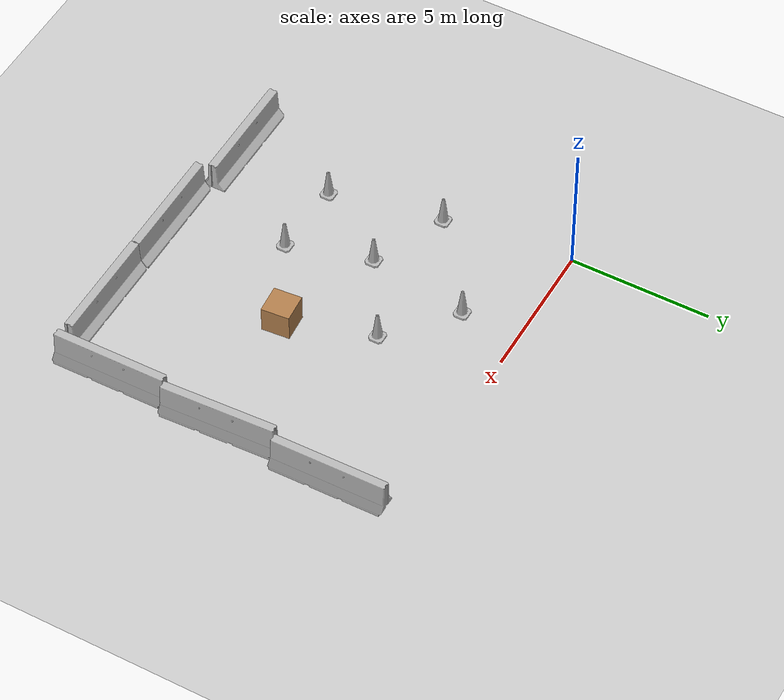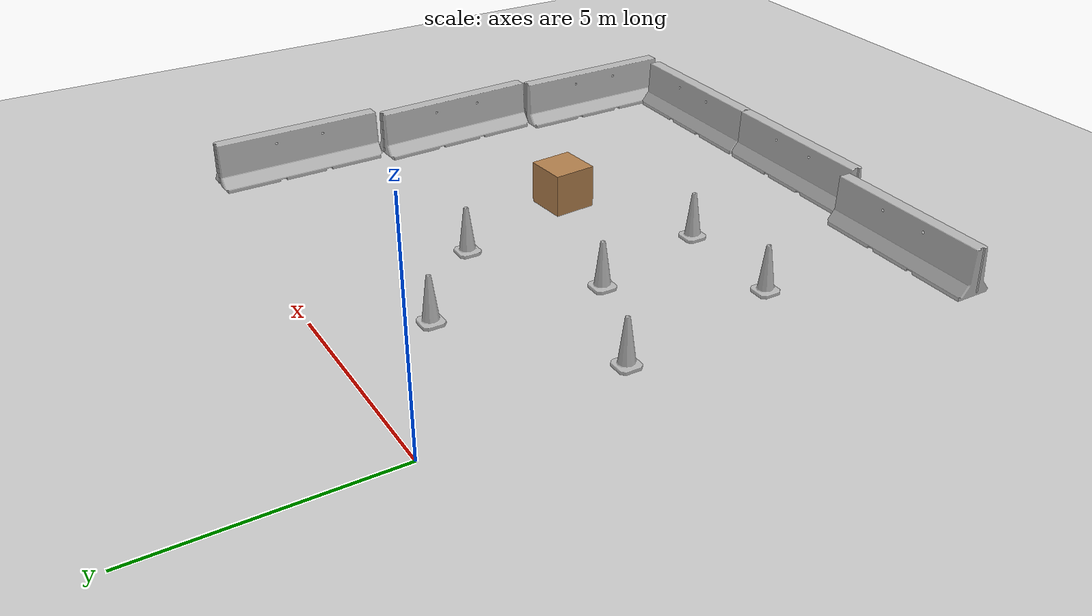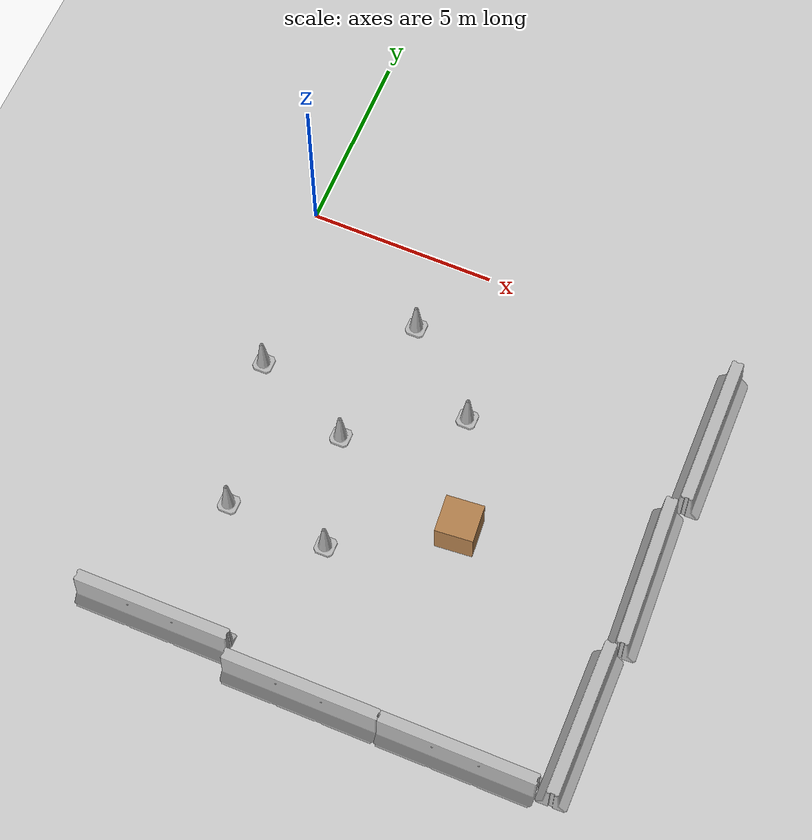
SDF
<sdf version="1.4">
 <world name="default">
  <model name="ground_plane">
   <static>1</static>
   <link name="link">
    <collision name="collision">
     <geometry><plane><normal>0 0 1</normal><size>100 100</size></plane></geometry>
     <surface><friction><ode><mu>100</mu><mu2>50</mu2></ode></friction></surface>
    </collision>
    <visual name="visual">
     <cast_shadows>0</cast_shadows>
     <geometry><plane><normal>0 0 1</normal><size>100 100</size></plane></geometry>
     <material>
      <script><uri>file://media/materials/scripts/gazebo.material</uri><name>Gazebo/Grey</name></script>
     </material>
    </visual>
    <velocity_decay><linear>0</linear><angular>0</angular></velocity_decay>
   </link>
  </model>
  <model name="unit_box_2">
   <pose>7 -7 0.5 0 -0 0.083754</pose>
   <link name="link">
    <inertial>
     <mass>1</mass>
     <inertia><ixx>1</ixx><ixy>0</ixy><ixz>0</ixz><iyy>1</iyy><iyz>0</iyz><izz>1</izz></inertia>
    </inertial>
    <collision name="collision"><geometry><box><size>1 1 1</size></box></geometry></collision>
    <visual name="visual">
     <geometry><box><size>1 1 1</size></box></geometry>
     <material>
      <script><uri>file://media/materials/scripts/gazebo.material</uri><name>Gazebo/Wood</name></script>
     </material>
    </visual>
    <velocity_decay><linear>0</linear><angular>0</angular></velocity_decay>
   </link>
   <static>0</static>
  </model>
  <model name="jersey_barrier_1">
   <static>1</static>
   <link name="link">
    <visual name="visual">
     <geometry><mesh><uri>model://jersey_barrier/meshes/jersey_barrier.dae</uri></mesh></geometry>
    </visual>
    <collision name="upright">
     <pose>0 0 0.5715 0 -0 0</pose>
     <geometry><box><size>4.06542 0.3063 1.143</size></box></geometry>
    </collision>
    <collision name="base">
     <pose>0 0 0.032258 0 -0 0</pose>
     <geometry><box><size>4.06542 0.8107 0.064516</size></box></geometry>
    </collision>
    <collision name="base2">
     <pose>0 0 0.1 0 -0 0</pose>
     <geometry><box><size>4.06542 0.65 0.1</size></box></geometry>
    </collision>
    <collision name="base3">
     <pose>0 0 0.2 0 -0 0</pose>
     <geometry><box><size>4.06542 0.5 0.1</size></box></geometry>
    </collision>
    <collision name="left-angle">
     <pose>0 -0.224 0.2401 0.9 -0 0</pose>
     <geometry><box><size>4.06542 0.5 0.064516</size></box></geometry>
    </collision>
    <collision name="right-angle">
     <pose>0 0.224 0.2401 -0.9 0 0</pose>
     <geometry><box><size>4.06542 0.5 0.064516</size></box></geometry>
    </collision>
    <velocity_decay><linear>0</linear><angular>0</angular></velocity_decay>
   </link>
   <pose>1 -12 0 0 -0 0</pose>
  </model>
  <model name="jersey_barrier_2">
   <static>1</static>
   <link name="link">
    <visual name="visual">
     <geometry><mesh><uri>model://jersey_barrier/meshes/jersey_barrier.dae</uri></mesh></geometry>
    </visual>
    <collision name="upright">
     <pose>0 0 0.5715 0 -0 0</pose>
     <geometry><box><size>4.06542 0.3063 1.143</size></box></geometry>
    </collision>
    <collision name="base">
     <pose>0 0 0.032258 0 -0 0</pose>
     <geometry><box><size>4.06542 0.8107 0.064516</size></box></geometry>
    </collision>
    <collision name="base2">
     <pose>0 0 0.1 0 -0 0</pose>
     <geometry><box><size>4.06542 0.65 0.1</size></box></geometry>
    </collision>
    <collision name="base3">
     <pose>0 0 0.2 0 -0 0</pose>
     <geometry><box><size>4.06542 0.5 0.1</size></box></geometry>
    </collision>
    <collision name="left-angle">
     <pose>0 -0.224 0.2401 0.9 -0 0</pose>
     <geometry><box><size>4.06542 0.5 0.064516</size></box></geometry>
    </collision>
    <collision name="right-angle">
     <pose>0 0.224 0.2401 -0.9 0 0</pose>
     <geometry><box><size>4.06542 0.5 0.064516</size></box></geometry>
    </collision>
    <velocity_decay><linear>0</linear><angular>0</angular></velocity_decay>
   </link>
   <pose>5.13642 -12.451 0 0 -0 0</pose>
  </model>
  <model name="jersey_barrier_3">
   <static>1</static>
   <link name="link">
    <visual name="visual">
     <geometry><mesh><uri>model://jersey_barrier/meshes/jersey_barrier.dae</uri></mesh></geometry>
    </visual>
    <collision name="upright">
     <pose>0 0 0.5715 0 -0 0</pose>
     <geometry><box><size>4.06542 0.3063 1.143</size></box></geometry>
    </collision>
    <collision name="base">
     <pose>0 0 0.032258 0 -0 0</pose>
     <geometry><box><size>4.06542 0.8107 0.064516</size></box></geometry>
    </collision>
    <collision name="base2">
     <pose>0 0 0.1 0 -0 0</pose>
     <geometry><box><size>4.06542 0.65 0.1</size></box></geometry>
    </collision>
    <collision name="base3">
     <pose>0 0 0.2 0 -0 0</pose>
     <geometry><box><size>4.06542 0.5 0.1</size></box></geometry>
    </collision>
    <collision name="left-angle">
     <pose>0 -0.224 0.2401 0.9 -0 0</pose>
     <geometry><box><size>4.06542 0.5 0.064516</size></box></geometry>
    </collision>
    <collision name="right-angle">
     <pose>0 0.224 0.2401 -0.9 0 0</pose>
     <geometry><box><size>4.06542 0.5 0.064516</size></box></geometry>
    </collision>
    <velocity_decay><linear>0</linear><angular>0</angular></velocity_decay>
   </link>
   <pose>9.19104 -12.4604 0 0 -0 0</pose>
  </model>
  <model name="jersey_barrier_4">
   <static>1</static>
   <link name="link">
    <visual name="visual">
     <geometry><mesh><uri>model://jersey_barrier/meshes/jersey_barrier.dae</uri></mesh></geometry>
    </visual>
    <collision name="upright">
     <pose>0 0 0.5715 0 -0 0</pose>
     <geometry><box><size>4.06542 0.3063 1.143</size></box></geometry>
    </collision>
    <collision name="base">
     <pose>0 0 0.032258 0 -0 0</pose>
     <geometry><box><size>4.06542 0.8107 0.064516</size></box></geometry>
    </collision>
    <collision name="base2">
     <pose>0 0 0.1 0 -0 0</pose>
     <geometry><box><size>4.06542 0.65 0.1</size></box></geometry>
    </collision>
    <collision name="base3">
     <pose>0 0 0.2 0 -0 0</pose>
     <geometry><box><size>4.06542 0.5 0.1</size></box></geometry>
    </collision>
    <collision name="left-angle">
     <pose>0 -0.224 0.2401 0.9 -0 0</pose>
     <geometry><box><size>4.06542 0.5 0.064516</size></box></geometry>
    </collision>
    <collision name="right-angle">
     <pose>0 0.224 0.2401 -0.9 0 0</pose>
     <geometry><box><size>4.06542 0.5 0.064516</size></box></geometry>
    </collision>
    <velocity_decay><linear>0</linear><angular>0</angular></velocity_decay>
   </link>
   <pose>11.6163 -10.6377 0 0 -0 1.58161</pose>
  </model>
  <model name="jersey_barrier_13">
   <static>1</static>
   <link name="link">
    <visual name="visual">
     <geometry><mesh><uri>model://jersey_barrier/meshes/jersey_barrier.dae</uri></mesh></geometry>
    </visual>
    <collision name="upright">
     <pose>0 0 0.5715 0 -0 0</pose>
     <geometry><box><size>4.06542 0.3063 1.143</size></box></geometry>
    </collision>
    <collision name="base">
     <pose>0 0 0.032258 0 -0 0</pose>
     <geometry><box><size>4.06542 0.8107 0.064516</size></box></geometry>
    </collision>
    <collision name="base2">
     <pose>0 0 0.1 0 -0 0</pose>
     <geometry><box><size>4.06542 0.65 0.1</size></box></geometry>
    </collision>
    <collision name="base3">
     <pose>0 0 0.2 0 -0 0</pose>
     <geometry><box><size>4.06542 0.5 0.1</size></box></geometry>
    </collision>
    <collision name="left-angle">
     <pose>0 -0.224 0.2401 0.9 -0 0</pose>
     <geometry><box><size>4.06542 0.5 0.064516</size></box></geometry>
    </collision>
    <collision name="right-angle">
     <pose>0 0.224 0.2401 -0.9 0 0</pose>
     <geometry><box><size>4.06542 0.5 0.064516</size></box></geometry>
    </collision>
    <velocity_decay><linear>0</linear><angular>0</angular></velocity_decay>
   </link>
   <pose>11.9521 -2.38624 0 0 -0 1.58545</pose>
  </model>
  <model name="jersey_barrier_14">
   <static>1</static>
   <link name="link">
    <visual name="visual">
     <geometry><mesh><uri>model://jersey_barrier/meshes/jersey_barrier.dae</uri></mesh></geometry>
    </visual>
    <collision name="upright">
     <pose>0 0 0.5715 0 -0 0</pose>
     <geometry><box><size>4.06542 0.3063 1.143</size></box></geometry>
    </collision>
    <collision name="base">
     <pose>0 0 0.032258 0 -0 0</pose>
     <geometry><box><size>4.06542 0.8107 0.064516</size></box></geometry>
    </collision>
    <collision name="base2">
     <pose>0 0 0.1 0 -0 0</pose>
     <geometry><box><size>4.06542 0.65 0.1</size></box></geometry>
    </collision>
    <collision name="base3">
     <pose>0 0 0.2 0 -0 0</pose>
     <geometry><box><size>4.06542 0.5 0.1</size></box></geometry>
    </collision>
    <collision name="left-angle">
     <pose>0 -0.224 0.2401 0.9 -0 0</pose>
     <geometry><box><size>4.06542 0.5 0.064516</size></box></geometry>
    </collision>
    <collision name="right-angle">
     <pose>0 0.224 0.2401 -0.9 0 0</pose>
     <geometry><box><size>4.06542 0.5 0.064516</size></box></geometry>
    </collision>
    <velocity_decay><linear>0</linear><angular>0</angular></velocity_decay>
   </link>
   <pose>11.7484 -6.5369 0 0 -0 1.61742</pose>
  </model>
  <model name="Construction Cone_1">
   <link name="link">
    <collision name="collision">
     <geometry>
      <mesh><scale>10 10 10</scale><uri>model://construction_cone/meshes/construction_cone.dae</uri></mesh>
     </geometry>
    </collision>
    <visual name="visual">
     <geometry>
      <mesh><scale>10 10 10</scale><uri>model://construction_cone/meshes/construction_cone.dae</uri></mesh>
     </geometry>
    </visual>
    <velocity_decay><linear>0</linear><angular>0</angular></velocity_decay>
    <inertial>
     <inertia><ixx>1</ixx><ixy>0</ixy><ixz>0</ixz><iyy>1</iyy><iyz>0</iyz><izz>1</izz></inertia>
     <mass>1</mass>
    </inertial>
   </link>
   <pose>0.541669 -4.54954 -9e-06 0 1e-06 0</pose>
   <static>0</static>
  </model>
  <model name="Construction Cone_3">
   <link name="link">
    <collision name="collision">
     <geometry>
      <mesh><scale>10 10 10</scale><uri>model://construction_cone/meshes/construction_cone.dae</uri></mesh>
     </geometry>
    </collision>
    <visual name="visual">
     <geometry>
      <mesh><scale>10 10 10</scale><uri>model://construction_cone/meshes/construction_cone.dae</uri></mesh>
     </geometry>
    </visual>
    <velocity_decay><linear>0</linear><angular>0</angular></velocity_decay>
    <inertial>
     <inertia><ixx>1</ixx><ixy>0</ixy><ixz>0</ixz><iyy>1</iyy><iyz>0</iyz><izz>1</izz></inertia>
     <mass>1</mass>
    </inertial>
   </link>
   <pose>3.78316 -2.07574 0 2e-06 1e-06 8.07794e-28</pose>
   <static>0</static>
  </model>
  <model name="Construction Cone_7">
   <link name="link">
    <collision name="collision">
     <geometry>
      <mesh><scale>10 10 10</scale><uri>model://construction_cone/meshes/construction_cone.dae</uri></mesh>
     </geometry>
    </collision>
    <visual name="visual">
     <geometry>
      <mesh><scale>10 10 10</scale><uri>model://construction_cone/meshes/construction_cone.dae</uri></mesh>
     </geometry>
    </visual>
    <velocity_decay><linear>0</linear><angular>0</angular></velocity_decay>
    <inertial>
     <inertia><ixx>1</ixx><ixy>0</ixy><ixz>0</ixz><iyy>1</iyy><iyz>0</iyz><izz>1</izz></inertia>
     <mass>1</mass>
    </inertial>
   </link>
   <pose>1.3561 -8.48937 -0 -2e-06 -0 -0</pose>
   <static>0</static>
  </model>
  <model name="Construction Cone_15">
   <link name="link">
    <collision name="collision">
     <geometry>
      <mesh><scale>10 10 10</scale><uri>model://construction_cone/meshes/construction_cone.dae</uri></mesh>
     </geometry>
    </collision>
    <visual name="visual">
     <geometry>
      <mesh><scale>10 10 10</scale><uri>model://construction_cone/meshes/construction_cone.dae</uri></mesh>
     </geometry>
    </visual>
    <velocity_decay><linear>0</linear><angular>0</angular></velocity_decay>
    <inertial>
     <inertia><ixx>1</ixx><ixy>0</ixy><ixz>0</ixz><iyy>1</iyy><iyz>0</iyz><izz>1</izz></inertia>
     <mass>1</mass>
    </inertial>
   </link>
   <pose>4.0578 -8.60381 -9e-06 0 1e-06 0</pose>
   <static>0</static>
  </model>
  <model name="Construction Cone_18">
   <link name="link">
    <collision name="collision">
     <geometry>
      <mesh><scale>10 10 10</scale><uri>model://construction_cone/meshes/construction_cone.dae</uri></mesh>
     </geometry>
    </collision>
    <visual name="visual">
     <geometry>
      <mesh><scale>10 10 10</scale><uri>model://construction_cone/meshes/construction_cone.dae</uri></mesh>
     </geometry>
    </visual>
    <velocity_decay><linear>0</linear><angular>0</angular></velocity_decay>
    <inertial>
     <inertia><ixx>1</ixx><ixy>0</ixy><ixz>0</ixz><iyy>1</iyy><iyz>0</iyz><izz>1</izz></inertia>
     <mass>1</mass>
    </inertial>
   </link>
   <pose>3.21457 -5.7046 -5e-06 -3e-06 5e-06 3.23117e-27</pose>
   <static>0</static>
  </model>
  <model name="Construction Cone_22">
   <link name="link">
    <collision name="collision">
     <geometry>
      <mesh><scale>10 10 10</scale><uri>model://construction_cone/meshes/construction_cone.dae</uri></mesh>
     </geometry>
    </collision>
    <visual name="visual">
     <geometry>
      <mesh><scale>10 10 10</scale><uri>model://construction_cone/meshes/construction_cone.dae</uri></mesh>
     </geometry>
    </visual>
    <velocity_decay><linear>0</linear><angular>0</angular></velocity_decay>
    <inertial>
     <inertia><ixx>1</ixx><ixy>0</ixy><ixz>0</ixz><iyy>1</iyy><iyz>0</iyz><izz>1</izz></inertia>
     <mass>1</mass>
    </inertial>
   </link>
   <pose>6 -4 -9e-06 -1e-06 2e-06 -8.07794e-28</pose>
   <static>0</static>
  </model>
 </world>
</sdf>
